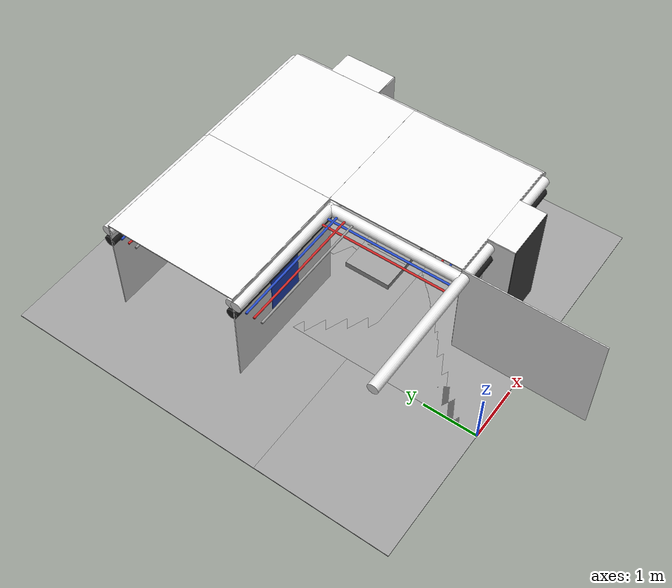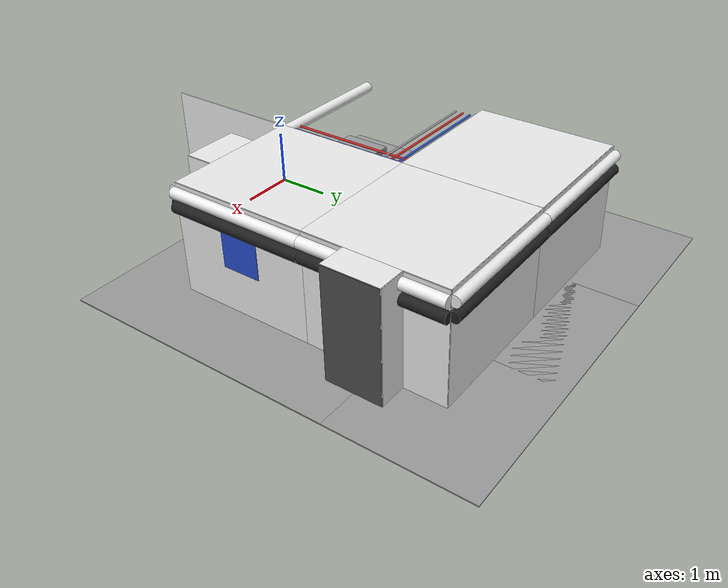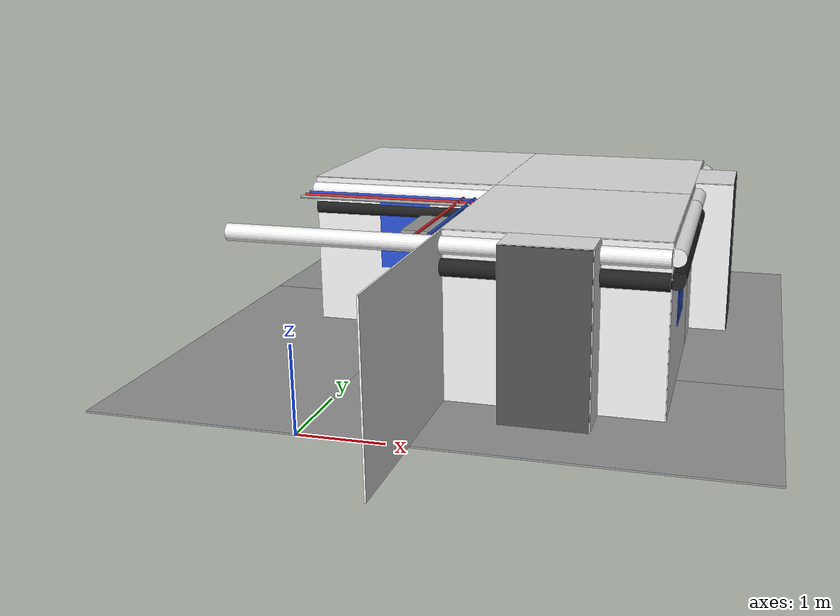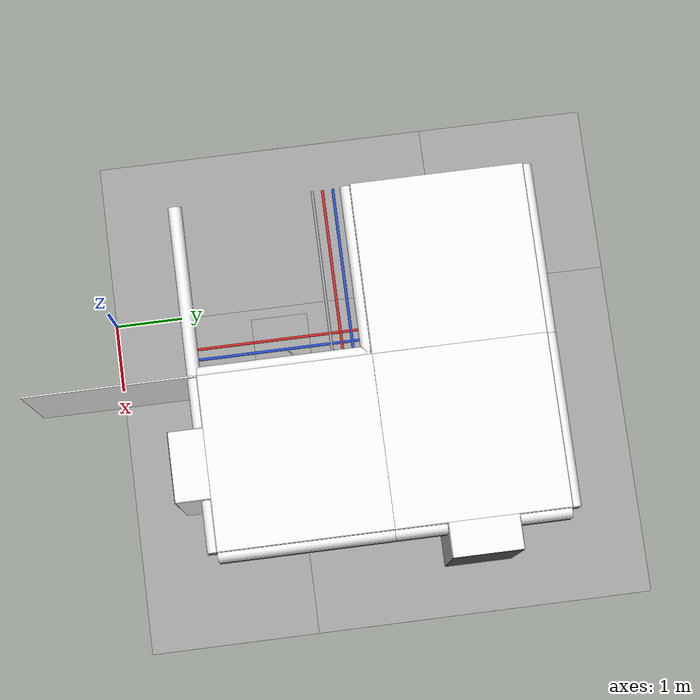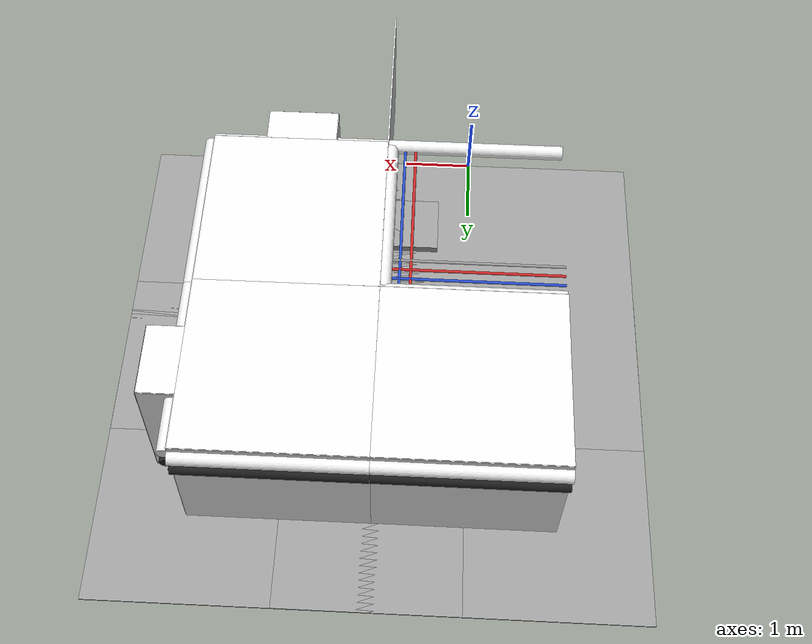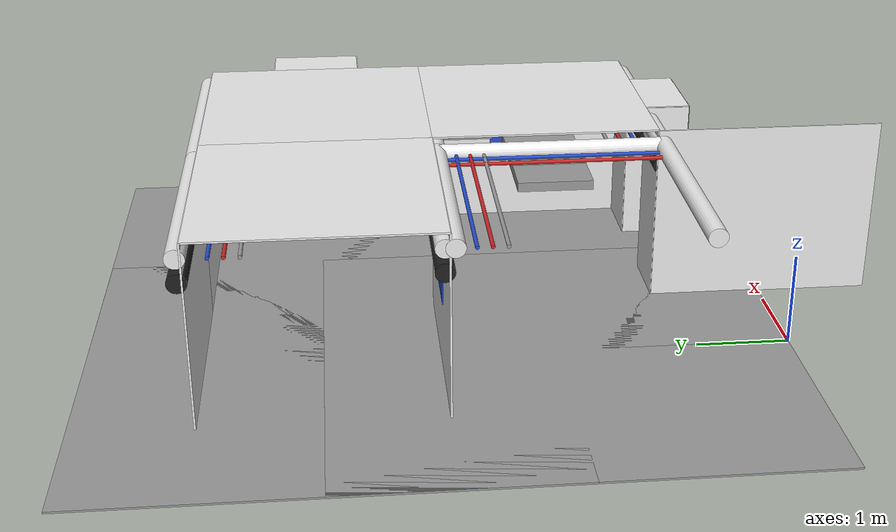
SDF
<sdf version="1.6">
 <world name="default">
  <model name="wall_right_0_0_0_0">
   <static>1</static>
   <pose>1.25 0.0 1.0 0.0 0.0 1.57</pose>
   <link name="link">
    <collision name="collision"><geometry><box><size>2.5 0.02 2.0</size></box></geometry></collision>
    <visual name="visual">
     <material>
      <script><name>Gazebo/White</name><uri>file://media/materials/scripts/gazebo.material</uri></script>
     </material>
     <geometry><box><size>2.5 0.02 2.0</size></box></geometry>
    </visual>
   </link>
  </model>
  <model name="ceiling_1_0_1_1_2">
   <pose>1.0 2.5 1.7 0.0 0.0 1.57</pose>
   <link name="link_1">
    <visual name="visual">
     <geometry><box><size>0.8 1 0.1</size></box></geometry>
     <material>
      <script><uri>file://media/materials/scripts/gazebo.material</uri><name>Gazebo/Grey</name></script>
     </material>
    </visual>
    <collision name="collision"><geometry><box><size>0.8 1 0.1</size></box></geometry></collision>
   </link>
   <static>1</static>
  </model>
  <model name="red_pipe_right_0_1_0_2">
   <static>1</static>
   <pose>0.0 2.5 1.84 0.0 0.0 0.0</pose>
   <link name="link_0">
    <visual name="visual">
     <pose>0.85 0 0 1.57 0 0</pose>
     <geometry><cylinder><radius>0.02</radius><length>2.5</length></cylinder></geometry>
     <material>
      <script><uri>file://media/materials/scripts/gazebo.material</uri><name>Gazebo/Red</name></script>
     </material>
    </visual>
    <collision name="collision">
     <pose>0.85 0 0 1.57 0 0</pose>
     <geometry><cylinder><radius>0.02</radius><length>2.5</length></cylinder></geometry>
    </collision>
   </link>
  </model>
  <model name="blue_pipe_right_0_1_0_2">
   <static>1</static>
   <pose>0.0 2.5 1.84 0.0 0.0 0.0</pose>
   <link name="link_0">
    <visual name="visual">
     <pose>1 0 0 1.57 0 0</pose>
     <geometry><cylinder><radius>0.02</radius><length>2.5</length></cylinder></geometry>
     <material>
      <script><uri>file://media/materials/scripts/gazebo.material</uri><name>Gazebo/Blue</name></script>
     </material>
    </visual>
    <collision name="collision">
     <pose>1 0 0 1.57 0 0</pose>
     <geometry><cylinder><radius>0.02</radius><length>2.5</length></cylinder></geometry>
    </collision>
   </link>
  </model>
  <model name="white_pipe_left_1_0_1_0_2">
   <static>1</static>
   <pose>0.0 2.5 1.84 0.0 0.0 1.57</pose>
   <link name="link_0">
    <visual name="visual">
     <pose>-1.3 0 0 1.57 0 0</pose>
     <geometry><cylinder><radius>0.1</radius><length>2.5</length></cylinder></geometry>
     <material>
      <script><uri>file://media/materials/scripts/gazebo.material</uri><name>Gazebo/White</name></script>
     </material>
    </visual>
    <collision name="collision">
     <pose>-1.3 0 0 1.57 0 0</pose>
     <geometry><cylinder><radius>0.1</radius><length>2.5</length></cylinder></geometry>
    </collision>
   </link>
  </model>
  <model name="white_pipe_right_1_0_1_0_2">
   <static>1</static>
   <pose>0.0 2.5 1.84 0.0 0.0 1.57</pose>
   <link name="link_0">
    <visual name="visual">
     <pose>1.3 0 0 1.57 0 0</pose>
     <geometry><cylinder><radius>0.1</radius><length>2.5</length></cylinder></geometry>
     <material>
      <script><uri>file://media/materials/scripts/gazebo.material</uri><name>Gazebo/White</name></script>
     </material>
    </visual>
    <collision name="collision">
     <pose>1.3 0 0 1.57 0 0</pose>
     <geometry><cylinder><radius>0.1</radius><length>2.5</length></cylinder></geometry>
    </collision>
   </link>
  </model>
  <model name="black_pipe_right_1_0_1_0_2">
   <static>1</static>
   <pose>0.0 2.5 1.84 0.0 0.0 1.57</pose>
   <link name="link_0">
    <visual name="visual">
     <pose>1.3 0 -0.25 1.57 0 0</pose>
     <geometry><cylinder><radius>0.1</radius><length>2.5</length></cylinder></geometry>
     <material>
      <script><uri>file://media/materials/scripts/gazebo.material</uri><name>Gazebo/Black</name></script>
     </material>
    </visual>
    <collision name="collision">
     <pose>1.3 0 -0.25 1.57 0 0</pose>
     <geometry><cylinder><radius>0.1</radius><length>2.5</length></cylinder></geometry>
    </collision>
   </link>
  </model>
  <model name="grey_pipe_right_1_0_1_0_2">
   <static>1</static>
   <pose>0.0 2.5 1.84 0.0 0.0 1.57</pose>
   <link name="link_0">
    <visual name="visual">
     <pose>0.7 0 0 1.57 0 0</pose>
     <geometry><cylinder><radius>0.02</radius><length>2.5</length></cylinder></geometry>
     <material>
      <script><uri>file://media/materials/scripts/gazebo.material</uri><name>Gazebo/Grey</name></script>
     </material>
    </visual>
    <collision name="collision">
     <pose>0.7 0 0 1.57 0 0</pose>
     <geometry><cylinder><radius>0.02</radius><length>2.5</length></cylinder></geometry>
    </collision>
   </link>
  </model>
  <model name="red_pipe_right_1_0_1_0_2">
   <static>1</static>
   <pose>0.0 2.5 1.84 0.0 0.0 1.57</pose>
   <link name="link_0">
    <visual name="visual">
     <pose>0.85 0 0 1.57 0 0</pose>
     <geometry><cylinder><radius>0.02</radius><length>2.5</length></cylinder></geometry>
     <material>
      <script><uri>file://media/materials/scripts/gazebo.material</uri><name>Gazebo/Red</name></script>
     </material>
    </visual>
    <collision name="collision">
     <pose>0.85 0 0 1.57 0 0</pose>
     <geometry><cylinder><radius>0.02</radius><length>2.5</length></cylinder></geometry>
    </collision>
   </link>
  </model>
  <model name="blue_pipe_right_1_0_1_0_2">
   <static>1</static>
   <pose>0.0 2.5 1.84 0.0 0.0 1.57</pose>
   <link name="link_0">
    <visual name="visual">
     <pose>1 0 0 1.57 0 0</pose>
     <geometry><cylinder><radius>0.02</radius><length>2.5</length></cylinder></geometry>
     <material>
      <script><uri>file://media/materials/scripts/gazebo.material</uri><name>Gazebo/Blue</name></script>
     </material>
    </visual>
    <collision name="collision">
     <pose>1 0 0 1.57 0 0</pose>
     <geometry><cylinder><radius>0.02</radius><length>2.5</length></cylinder></geometry>
    </collision>
   </link>
  </model>
  <model name="panel_0_1_0_2">
   <static>1</static>
   <pose>0.0 3.75 1.3 0.0 0.0 1.57</pose>
   <link name="link">
    <collision name="collision"><geometry><box><size>0.04 0.7 1</size></box></geometry></collision>
    <visual name="visual">
     <material>
      <script><name>Gazebo/Blue</name><uri>file://media/materials/scripts/gazebo.material</uri></script>
     </material>
     <geometry><box><size>0.04 0.7 1</size></box></geometry>
    </visual>
   </link>
  </model>
  <model name="wall_bottom_0_1_0_2">
   <static>1</static>
   <pose>0.0 2.5 0.0 0.0 0.0 0.0</pose>
   <link name="link">
    <collision name="collision"><geometry><box><size>5.0 5.0 0.02</size></box></geometry></collision>
    <visual name="visual">
     <material>
      <script><name>Gazebo/Grey</name><uri>file://media/materials/scripts/gazebo.material</uri></script>
     </material>
     <geometry><box><size>5.0 5.0 0.02</size></box></geometry>
    </visual>
   </link>
  </model>
  <model name="wall_front_1_1_0_3">
   <static>1</static>
   <pose>3.75 2.5 1.0 0.0 0.0 -1.57</pose>
   <link name="link">
    <collision name="collision"><geometry><box><size>2.5 0.02 2.0</size></box></geometry></collision>
    <visual name="visual">
     <material>
      <script><name>Gazebo/White</name><uri>file://media/materials/scripts/gazebo.material</uri></script>
     </material>
     <geometry><box><size>2.5 0.02 2.0</size></box></geometry>
    </visual>
   </link>
  </model>
  <model name="wall_top_1_1_0_3">
   <static>1</static>
   <pose>2.5 2.5 2.0 1.57 0.0 -1.57</pose>
   <link name="link">
    <collision name="collision"><geometry><box><size>2.5 0.02 2.5</size></box></geometry></collision>
    <visual name="visual">
     <material>
      <script><name>Gazebo/White</name><uri>file://media/materials/scripts/gazebo.material</uri></script>
     </material>
     <geometry><box><size>2.5 0.02 2.5</size></box></geometry>
    </visual>
   </link>
  </model>
  <model name="ceiling_1_1_1_0_3">
   <pose>1.5 2.5 1.7 0.0 0.0 -1.57</pose>
   <link name="link_1">
    <visual name="visual">
     <geometry><box><size>0.8 1 0.1</size></box></geometry>
     <material>
      <script><uri>file://media/materials/scripts/gazebo.material</uri><name>Gazebo/Grey</name></script>
     </material>
    </visual>
    <collision name="collision"><geometry><box><size>0.8 1 0.1</size></box></geometry></collision>
   </link>
   <static>1</static>
  </model>
  <model name="ceiling_1_1_1_1_3">
   <pose>2.5 3.5 1.7 0.0 0.0 0.0</pose>
   <link name="link_1">
    <visual name="visual">
     <geometry><box><size>0.8 1 0.1</size></box></geometry>
     <material>
      <script><uri>file://media/materials/scripts/gazebo.material</uri><name>Gazebo/Grey</name></script>
     </material>
    </visual>
    <collision name="collision"><geometry><box><size>0.8 1 0.1</size></box></geometry></collision>
   </link>
   <static>1</static>
  </model>
  <model name="white_pipe_left_1_1_0_3">
   <static>1</static>
   <pose>2.5 2.5 1.84 0.0 0.0 -1.57</pose>
   <link name="link_0">
    <visual name="visual">
     <pose>-1.3 0 0 1.57 0 0</pose>
     <geometry><cylinder><radius>0.1</radius><length>2.5</length></cylinder></geometry>
     <material>
      <script><uri>file://media/materials/scripts/gazebo.material</uri><name>Gazebo/White</name></script>
     </material>
    </visual>
    <collision name="collision">
     <pose>-1.3 0 0 1.57 0 0</pose>
     <geometry><cylinder><radius>0.1</radius><length>2.5</length></cylinder></geometry>
    </collision>
   </link>
  </model>
  <model name="white_pipe_right_1_1_0_3">
   <static>1</static>
   <pose>2.5 2.5 1.84 0.0 0.0 -1.57</pose>
   <link name="link_0">
    <visual name="visual">
     <pose>1.3 0 0 1.57 0 0</pose>
     <geometry><cylinder><radius>0.1</radius><length>2.5</length></cylinder></geometry>
     <material>
      <script><uri>file://media/materials/scripts/gazebo.material</uri><name>Gazebo/White</name></script>
     </material>
    </visual>
    <collision name="collision">
     <pose>1.3 0 0 1.57 0 0</pose>
     <geometry><cylinder><radius>0.1</radius><length>2.5</length></cylinder></geometry>
    </collision>
   </link>
  </model>
  <model name="black_pipe_right_1_1_0_3">
   <static>1</static>
   <pose>2.5 2.5 1.84 0.0 0.0 -1.57</pose>
   <link name="link_0">
    <visual name="visual">
     <pose>1.3 0 -0.25 1.57 0 0</pose>
     <geometry><cylinder><radius>0.1</radius><length>2.5</length></cylinder></geometry>
     <material>
      <script><uri>file://media/materials/scripts/gazebo.material</uri><name>Gazebo/Black</name></script>
     </material>
    </visual>
    <collision name="collision">
     <pose>1.3 0 -0.25 1.57 0 0</pose>
     <geometry><cylinder><radius>0.1</radius><length>2.5</length></cylinder></geometry>
    </collision>
   </link>
  </model>
  <model name="grey_pipe_right_1_1_0_3">
   <static>1</static>
   <pose>2.5 2.5 1.84 0.0 0.0 -1.57</pose>
   <link name="link_0">
    <visual name="visual">
     <pose>0.7 0 0 1.57 0 0</pose>
     <geometry><cylinder><radius>0.02</radius><length>2.5</length></cylinder></geometry>
     <material>
      <script><uri>file://media/materials/scripts/gazebo.material</uri><name>Gazebo/Grey</name></script>
     </material>
    </visual>
    <collision name="collision">
     <pose>0.7 0 0 1.57 0 0</pose>
     <geometry><cylinder><radius>0.02</radius><length>2.5</length></cylinder></geometry>
    </collision>
   </link>
  </model>
  <model name="red_pipe_right_1_1_0_3">
   <static>1</static>
   <pose>2.5 2.5 1.84 0.0 0.0 -1.57</pose>
   <link name="link_0">
    <visual name="visual">
     <pose>0.85 0 0 1.57 0 0</pose>
     <geometry><cylinder><radius>0.02</radius><length>2.5</length></cylinder></geometry>
     <material>
      <script><uri>file://media/materials/scripts/gazebo.material</uri><name>Gazebo/Red</name></script>
     </material>
    </visual>
    <collision name="collision">
     <pose>0.85 0 0 1.57 0 0</pose>
     <geometry><cylinder><radius>0.02</radius><length>2.5</length></cylinder></geometry>
    </collision>
   </link>
  </model>
  <model name="blue_pipe_right_1_1_0_3">
   <static>1</static>
   <pose>2.5 2.5 1.84 0.0 0.0 -1.57</pose>
   <link name="link_0">
    <visual name="visual">
     <pose>1 0 0 1.57 0 0</pose>
     <geometry><cylinder><radius>0.02</radius><length>2.5</length></cylinder></geometry>
     <material>
      <script><uri>file://media/materials/scripts/gazebo.material</uri><name>Gazebo/Blue</name></script>
     </material>
    </visual>
    <collision name="collision">
     <pose>1 0 0 1.57 0 0</pose>
     <geometry><cylinder><radius>0.02</radius><length>2.5</length></cylinder></geometry>
    </collision>
   </link>
  </model>
  <model name="white_pipe_left_1_1_1_0_3">
   <static>1</static>
   <pose>2.5 2.5 1.84 0.0 0.0 0.0</pose>
   <link name="link_0">
    <visual name="visual">
     <pose>-1.3 0 0 1.57 0 0</pose>
     <geometry><cylinder><radius>0.1</radius><length>2.5</length></cylinder></geometry>
     <material>
      <script><uri>file://media/materials/scripts/gazebo.material</uri><name>Gazebo/White</name></script>
     </material>
    </visual>
    <collision name="collision">
     <pose>-1.3 0 0 1.57 0 0</pose>
     <geometry><cylinder><radius>0.1</radius><length>2.5</length></cylinder></geometry>
    </collision>
   </link>
  </model>
  <model name="white_pipe_right_1_1_1_0_3">
   <static>1</static>
   <pose>2.5 2.5 1.84 0.0 0.0 0.0</pose>
   <link name="link_0">
    <visual name="visual">
     <pose>1.3 0 0 1.57 0 0</pose>
     <geometry><cylinder><radius>0.1</radius><length>2.5</length></cylinder></geometry>
     <material>
      <script><uri>file://media/materials/scripts/gazebo.material</uri><name>Gazebo/White</name></script>
     </material>
    </visual>
    <collision name="collision">
     <pose>1.3 0 0 1.57 0 0</pose>
     <geometry><cylinder><radius>0.1</radius><length>2.5</length></cylinder></geometry>
    </collision>
   </link>
  </model>
  <model name="black_pipe_right_1_1_1_0_3">
   <static>1</static>
   <pose>2.5 2.5 1.84 0.0 0.0 0.0</pose>
   <link name="link_0">
    <visual name="visual">
     <pose>1.3 0 -0.25 1.57 0 0</pose>
     <geometry><cylinder><radius>0.1</radius><length>2.5</length></cylinder></geometry>
     <material>
      <script><uri>file://media/materials/scripts/gazebo.material</uri><name>Gazebo/Black</name></script>
     </material>
    </visual>
    <collision name="collision">
     <pose>1.3 0 -0.25 1.57 0 0</pose>
     <geometry><cylinder><radius>0.1</radius><length>2.5</length></cylinder></geometry>
    </collision>
   </link>
  </model>
  <model name="grey_pipe_right_1_1_1_0_3">
   <static>1</static>
   <pose>2.5 2.5 1.84 0.0 0.0 0.0</pose>
   <link name="link_0">
    <visual name="visual">
     <pose>0.7 0 0 1.57 0 0</pose>
     <geometry><cylinder><radius>0.02</radius><length>2.5</length></cylinder></geometry>
     <material>
      <script><uri>file://media/materials/scripts/gazebo.material</uri><name>Gazebo/Grey</name></script>
     </material>
    </visual>
    <collision name="collision">
     <pose>0.7 0 0 1.57 0 0</pose>
     <geometry><cylinder><radius>0.02</radius><length>2.5</length></cylinder></geometry>
    </collision>
   </link>
  </model>
  <model name="red_pipe_right_1_1_1_0_3">
   <static>1</static>
   <pose>2.5 2.5 1.84 0.0 0.0 0.0</pose>
   <link name="link_0">
    <visual name="visual">
     <pose>0.85 0 0 1.57 0 0</pose>
     <geometry><cylinder><radius>0.02</radius><length>2.5</length></cylinder></geometry>
     <material>
      <script><uri>file://media/materials/scripts/gazebo.material</uri><name>Gazebo/Red</name></script>
     </material>
    </visual>
    <collision name="collision">
     <pose>0.85 0 0 1.57 0 0</pose>
     <geometry><cylinder><radius>0.02</radius><length>2.5</length></cylinder></geometry>
    </collision>
   </link>
  </model>
  <model name="blue_pipe_right_1_1_1_0_3">
   <static>1</static>
   <pose>2.5 2.5 1.84 0.0 0.0 0.0</pose>
   <link name="link_0">
    <visual name="visual">
     <pose>1 0 0 1.57 0 0</pose>
     <geometry><cylinder><radius>0.02</radius><length>2.5</length></cylinder></geometry>
     <material>
      <script><uri>file://media/materials/scripts/gazebo.material</uri><name>Gazebo/Blue</name></script>
     </material>
    </visual>
    <collision name="collision">
     <pose>1 0 0 1.57 0 0</pose>
     <geometry><cylinder><radius>0.02</radius><length>2.5</length></cylinder></geometry>
    </collision>
   </link>
  </model>
  <model name="panel_1_1_0_3">
   <static>1</static>
   <pose>3.75 2.5 1.3 0.0 0.0 0.0</pose>
   <link name="link">
    <collision name="collision"><geometry><box><size>0.04 0.7 1</size></box></geometry></collision>
    <visual name="visual">
     <material>
      <script><name>Gazebo/Blue</name><uri>file://media/materials/scripts/gazebo.material</uri></script>
     </material>
     <geometry><box><size>0.04 0.7 1</size></box></geometry>
    </visual>
   </link>
  </model>
  <model name="wall_right_front_left_1_1_0_3">
   <static>1</static>
   <pose>3.375 1.25 1.0 0.0 0.0 0.0</pose>
   <link name="link">
    <collision name="collision"><geometry><box><size>0.75 0.02 2.0</size></box></geometry></collision>
    <visual name="visual">
     <material>
      <script><name>Gazebo/White</name><uri>file://media/materials/scripts/gazebo.material</uri></script>
     </material>
     <geometry><box><size>0.75 0.02 2.0</size></box></geometry>
    </visual>
   </link>
  </model>
  <model name="wall_right_front_right_1_1_0_3">
   <static>1</static>
   <pose>1.625 1.25 1.0 0.0 0.0 0.0</pose>
   <link name="link">
    <collision name="collision"><geometry><box><size>0.75 0.02 2.0</size></box></geometry></collision>
    <visual name="visual">
     <material>
      <script><name>Gazebo/White</name><uri>file://media/materials/scripts/gazebo.material</uri></script>
     </material>
     <geometry><box><size>0.75 0.02 2.0</size></box></geometry>
    </visual>
   </link>
  </model>
  <model name="wall_right_front_up_1_1_0_3">
   <static>1</static>
   <pose>2.5 1.25 2.0 0.0 0.0 0.0</pose>
   <link name="link">
    <collision name="collision"><geometry><box><size>1.0 0.02 0.001</size></box></geometry></collision>
    <visual name="visual">
     <material>
      <script><name>Gazebo/White</name><uri>file://media/materials/scripts/gazebo.material</uri></script>
     </material>
     <geometry><box><size>1.0 0.02 0.001</size></box></geometry>
    </visual>
   </link>
  </model>
  <model name="wall_right_inside_back_1_1_0_3">
   <static>1</static>
   <pose>2.5 0.75 1.0 0.0 0.0 0.0</pose>
   <link name="link">
    <collision name="collision"><geometry><box><size>1 0.02 2</size></box></geometry></collision>
    <visual name="visual">
     <material>
      <script><name>Gazebo/DarkGrey</name><uri>file://media/materials/scripts/gazebo.material</uri></script>
     </material>
     <geometry><box><size>1 0.02 2</size></box></geometry>
    </visual>
   </link>
  </model>
  <model name="wall_right_inside_left_1_1_0_3">
   <static>1</static>
   <pose>3.0 1.0 1.0 0.0 0.0 -1.57</pose>
   <link name="link">
    <collision name="collision"><geometry><box><size>0.5 0.02 2</size></box></geometry></collision>
    <visual name="visual">
     <material>
      <script><name>Gazebo/White</name><uri>file://media/materials/scripts/gazebo.material</uri></script>
     </material>
     <geometry><box><size>0.5 0.02 2</size></box></geometry>
    </visual>
   </link>
  </model>
  <model name="wall_right_inside_right_1_1_0_3">
   <static>1</static>
   <pose>2.0 1.0 1.0 0.0 0.0 -1.57</pose>
   <link name="link">
    <collision name="collision"><geometry><box><size>0.5 0.02 2</size></box></geometry></collision>
    <visual name="visual">
     <material>
      <script><name>Gazebo/White</name><uri>file://media/materials/scripts/gazebo.material</uri></script>
     </material>
     <geometry><box><size>0.5 0.02 2</size></box></geometry>
    </visual>
   </link>
  </model>
  <model name="wall_right_inside_top_1_1_0_3">
   <static>1</static>
   <pose>2.5 1.0 2.0 1.57 0.0 0.0</pose>
   <link name="link">
    <collision name="collision"><geometry><box><size>1 0.02 0.5</size></box></geometry></collision>
    <visual name="visual">
     <material>
      <script><name>Gazebo/White</name><uri>file://media/materials/scripts/gazebo.material</uri></script>
     </material>
     <geometry><box><size>1 0.02 0.5</size></box></geometry>
    </visual>
   </link>
  </model>
  <model name="wall_bottom_1_1_0_3">
   <static>1</static>
   <pose>2.5 2.5 0.0 0.0 0.0 -1.57</pose>
   <link name="link">
    <collision name="collision"><geometry><box><size>5.0 5.0 0.02</size></box></geometry></collision>
    <visual name="visual">
     <material>
      <script><name>Gazebo/Grey</name><uri>file://media/materials/scripts/gazebo.material</uri></script>
     </material>
     <geometry><box><size>5.0 5.0 0.02</size></box></geometry>
    </visual>
   </link>
  </model>
  <model name="wall_front_1_2_0_3">
   <static>1</static>
   <pose>2.5 6.25 1.0 0.0 0.0 0.0</pose>
   <link name="link">
    <collision name="collision"><geometry><box><size>2.5 0.02 2.0</size></box></geometry></collision>
    <visual name="visual">
     <material>
      <script><name>Gazebo/White</name><uri>file://media/materials/scripts/gazebo.material</uri></script>
     </material>
     <geometry><box><size>2.5 0.02 2.0</size></box></geometry>
    </visual>
   </link>
  </model>
  <model name="wall_top_1_2_0_3">
   <static>1</static>
   <pose>2.5 5.0 2.0 1.57 0.0 0.0</pose>
   <link name="link">
    <collision name="collision"><geometry><box><size>2.5 0.02 2.5</size></box></geometry></collision>
    <visual name="visual">
     <material>
      <script><name>Gazebo/White</name><uri>file://media/materials/scripts/gazebo.material</uri></script>
     </material>
     <geometry><box><size>2.5 0.02 2.5</size></box></geometry>
    </visual>
   </link>
  </model>
  <model name="ceiling_1_1_2_0_3">
   <pose>2.5 4.0 1.7 0.0 0.0 0.0</pose>
   <link name="link_1">
    <visual name="visual">
     <geometry><box><size>0.8 1 0.1</size></box></geometry>
     <material>
      <script><uri>file://media/materials/scripts/gazebo.material</uri><name>Gazebo/Grey</name></script>
     </material>
    </visual>
    <collision name="collision"><geometry><box><size>0.8 1 0.1</size></box></geometry></collision>
   </link>
   <static>1</static>
  </model>
  <model name="ceiling_1_1_2_1_3">
   <pose>1.5 5.0 1.7 0.0 0.0 1.57</pose>
   <link name="link_1">
    <visual name="visual">
     <geometry><box><size>0.8 1 0.1</size></box></geometry>
     <material>
      <script><uri>file://media/materials/scripts/gazebo.material</uri><name>Gazebo/Grey</name></script>
     </material>
    </visual>
    <collision name="collision"><geometry><box><size>0.8 1 0.1</size></box></geometry></collision>
   </link>
   <static>1</static>
  </model>
  <model name="white_pipe_left_1_2_0_3">
   <static>1</static>
   <pose>2.5 5.0 1.84 0.0 0.0 0.0</pose>
   <link name="link_0">
    <visual name="visual">
     <pose>-1.3 0 0 1.57 0 0</pose>
     <geometry><cylinder><radius>0.1</radius><length>2.5</length></cylinder></geometry>
     <material>
      <script><uri>file://media/materials/scripts/gazebo.material</uri><name>Gazebo/White</name></script>
     </material>
    </visual>
    <collision name="collision">
     <pose>-1.3 0 0 1.57 0 0</pose>
     <geometry><cylinder><radius>0.1</radius><length>2.5</length></cylinder></geometry>
    </collision>
   </link>
  </model>
  <model name="white_pipe_right_1_2_0_3">
   <static>1</static>
   <pose>2.5 5.0 1.84 0.0 0.0 0.0</pose>
   <link name="link_0">
    <visual name="visual">
     <pose>1.3 0 0 1.57 0 0</pose>
     <geometry><cylinder><radius>0.1</radius><length>2.5</length></cylinder></geometry>
     <material>
      <script><uri>file://media/materials/scripts/gazebo.material</uri><name>Gazebo/White</name></script>
     </material>
    </visual>
    <collision name="collision">
     <pose>1.3 0 0 1.57 0 0</pose>
     <geometry><cylinder><radius>0.1</radius><length>2.5</length></cylinder></geometry>
    </collision>
   </link>
  </model>
  <model name="black_pipe_right_1_2_0_3">
   <static>1</static>
   <pose>2.5 5.0 1.84 0.0 0.0 0.0</pose>
   <link name="link_0">
    <visual name="visual">
     <pose>1.3 0 -0.25 1.57 0 0</pose>
     <geometry><cylinder><radius>0.1</radius><length>2.5</length></cylinder></geometry>
     <material>
      <script><uri>file://media/materials/scripts/gazebo.material</uri><name>Gazebo/Black</name></script>
     </material>
    </visual>
    <collision name="collision">
     <pose>1.3 0 -0.25 1.57 0 0</pose>
     <geometry><cylinder><radius>0.1</radius><length>2.5</length></cylinder></geometry>
    </collision>
   </link>
  </model>
  <model name="grey_pipe_right_1_2_0_3">
   <static>1</static>
   <pose>2.5 5.0 1.84 0.0 0.0 0.0</pose>
   <link name="link_0">
    <visual name="visual">
     <pose>0.7 0 0 1.57 0 0</pose>
     <geometry><cylinder><radius>0.02</radius><length>2.5</length></cylinder></geometry>
     <material>
      <script><uri>file://media/materials/scripts/gazebo.material</uri><name>Gazebo/Grey</name></script>
     </material>
    </visual>
    <collision name="collision">
     <pose>0.7 0 0 1.57 0 0</pose>
     <geometry><cylinder><radius>0.02</radius><length>2.5</length></cylinder></geometry>
    </collision>
   </link>
  </model>
  <model name="red_pipe_right_1_2_0_3">
   <static>1</static>
   <pose>2.5 5.0 1.84 0.0 0.0 0.0</pose>
   <link name="link_0">
    <visual name="visual">
     <pose>0.85 0 0 1.57 0 0</pose>
     <geometry><cylinder><radius>0.02</radius><length>2.5</length></cylinder></geometry>
     <material>
      <script><uri>file://media/materials/scripts/gazebo.material</uri><name>Gazebo/Red</name></script>
     </material>
    </visual>
    <collision name="collision">
     <pose>0.85 0 0 1.57 0 0</pose>
     <geometry><cylinder><radius>0.02</radius><length>2.5</length></cylinder></geometry>
    </collision>
   </link>
  </model>
  <model name="blue_pipe_right_1_2_0_3">
   <static>1</static>
   <pose>2.5 5.0 1.84 0.0 0.0 0.0</pose>
   <link name="link_0">
    <visual name="visual">
     <pose>1 0 0 1.57 0 0</pose>
     <geometry><cylinder><radius>0.02</radius><length>2.5</length></cylinder></geometry>
     <material>
      <script><uri>file://media/materials/scripts/gazebo.material</uri><name>Gazebo/Blue</name></script>
     </material>
    </visual>
    <collision name="collision">
     <pose>1 0 0 1.57 0 0</pose>
     <geometry><cylinder><radius>0.02</radius><length>2.5</length></cylinder></geometry>
    </collision>
   </link>
  </model>
  <model name="white_pipe_left_1_1_2_0_3">
   <static>1</static>
   <pose>2.5 5.0 1.84 0.0 0.0 1.57</pose>
   <link name="link_0">
    <visual name="visual">
     <pose>-1.3 0 0 1.57 0 0</pose>
     <geometry><cylinder><radius>0.1</radius><length>2.5</length></cylinder></geometry>
     <material>
      <script><uri>file://media/materials/scripts/gazebo.material</uri><name>Gazebo/White</name></script>
     </material>
    </visual>
    <collision name="collision">
     <pose>-1.3 0 0 1.57 0 0</pose>
     <geometry><cylinder><radius>0.1</radius><length>2.5</length></cylinder></geometry>
    </collision>
   </link>
  </model>
  <model name="white_pipe_right_1_1_2_0_3">
   <static>1</static>
   <pose>2.5 5.0 1.84 0.0 0.0 1.57</pose>
   <link name="link_0">
    <visual name="visual">
     <pose>1.3 0 0 1.57 0 0</pose>
     <geometry><cylinder><radius>0.1</radius><length>2.5</length></cylinder></geometry>
     <material>
      <script><uri>file://media/materials/scripts/gazebo.material</uri><name>Gazebo/White</name></script>
     </material>
    </visual>
    <collision name="collision">
     <pose>1.3 0 0 1.57 0 0</pose>
     <geometry><cylinder><radius>0.1</radius><length>2.5</length></cylinder></geometry>
    </collision>
   </link>
  </model>
  <model name="black_pipe_right_1_1_2_0_3">
   <static>1</static>
   <pose>2.5 5.0 1.84 0.0 0.0 1.57</pose>
   <link name="link_0">
    <visual name="visual">
     <pose>1.3 0 -0.25 1.57 0 0</pose>
     <geometry><cylinder><radius>0.1</radius><length>2.5</length></cylinder></geometry>
     <material>
      <script><uri>file://media/materials/scripts/gazebo.material</uri><name>Gazebo/Black</name></script>
     </material>
    </visual>
    <collision name="collision">
     <pose>1.3 0 -0.25 1.57 0 0</pose>
     <geometry><cylinder><radius>0.1</radius><length>2.5</length></cylinder></geometry>
    </collision>
   </link>
  </model>
  <model name="grey_pipe_right_1_1_2_0_3">
   <static>1</static>
   <pose>2.5 5.0 1.84 0.0 0.0 1.57</pose>
   <link name="link_0">
    <visual name="visual">
     <pose>0.7 0 0 1.57 0 0</pose>
     <geometry><cylinder><radius>0.02</radius><length>2.5</length></cylinder></geometry>
     <material>
      <script><uri>file://media/materials/scripts/gazebo.material</uri><name>Gazebo/Grey</name></script>
     </material>
    </visual>
    <collision name="collision">
     <pose>0.7 0 0 1.57 0 0</pose>
     <geometry><cylinder><radius>0.02</radius><length>2.5</length></cylinder></geometry>
    </collision>
   </link>
  </model>
  <model name="red_pipe_right_1_1_2_0_3">
   <static>1</static>
   <pose>2.5 5.0 1.84 0.0 0.0 1.57</pose>
   <link name="link_0">
    <visual name="visual">
     <pose>0.85 0 0 1.57 0 0</pose>
     <geometry><cylinder><radius>0.02</radius><length>2.5</length></cylinder></geometry>
     <material>
      <script><uri>file://media/materials/scripts/gazebo.material</uri><name>Gazebo/Red</name></script>
     </material>
    </visual>
    <collision name="collision">
     <pose>0.85 0 0 1.57 0 0</pose>
     <geometry><cylinder><radius>0.02</radius><length>2.5</length></cylinder></geometry>
    </collision>
   </link>
  </model>
  <model name="blue_pipe_right_1_1_2_0_3">
   <static>1</static>
   <pose>2.5 5.0 1.84 0.0 0.0 1.57</pose>
   <link name="link_0">
    <visual name="visual">
     <pose>1 0 0 1.57 0 0</pose>
     <geometry><cylinder><radius>0.02</radius><length>2.5</length></cylinder></geometry>
     <material>
      <script><uri>file://media/materials/scripts/gazebo.material</uri><name>Gazebo/Blue</name></script>
     </material>
    </visual>
    <collision name="collision">
     <pose>1 0 0 1.57 0 0</pose>
     <geometry><cylinder><radius>0.02</radius><length>2.5</length></cylinder></geometry>
    </collision>
   </link>
  </model>
  <model name="wall_right_front_left_1_2_0_3">
   <static>1</static>
   <pose>3.75 5.875 1.0 0.0 0.0 1.57</pose>
   <link name="link">
    <collision name="collision"><geometry><box><size>0.75 0.02 2.0</size></box></geometry></collision>
    <visual name="visual">
     <material>
      <script><name>Gazebo/White</name><uri>file://media/materials/scripts/gazebo.material</uri></script>
     </material>
     <geometry><box><size>0.75 0.02 2.0</size></box></geometry>
    </visual>
   </link>
  </model>
  <model name="wall_right_front_right_1_2_0_3">
   <static>1</static>
   <pose>3.75 4.125 1.0 0.0 0.0 1.57</pose>
   <link name="link">
    <collision name="collision"><geometry><box><size>0.75 0.02 2.0</size></box></geometry></collision>
    <visual name="visual">
     <material>
      <script><name>Gazebo/White</name><uri>file://media/materials/scripts/gazebo.material</uri></script>
     </material>
     <geometry><box><size>0.75 0.02 2.0</size></box></geometry>
    </visual>
   </link>
  </model>
  <model name="wall_right_front_up_1_2_0_3">
   <static>1</static>
   <pose>3.75 5.0 2.0 0.0 0.0 1.57</pose>
   <link name="link">
    <collision name="collision"><geometry><box><size>1.0 0.02 0.001</size></box></geometry></collision>
    <visual name="visual">
     <material>
      <script><name>Gazebo/White</name><uri>file://media/materials/scripts/gazebo.material</uri></script>
     </material>
     <geometry><box><size>1.0 0.02 0.001</size></box></geometry>
    </visual>
   </link>
  </model>
  <model name="wall_right_inside_back_1_2_0_3">
   <static>1</static>
   <pose>4.25 5.0 1.0 0.0 0.0 1.57</pose>
   <link name="link">
    <collision name="collision"><geometry><box><size>1 0.02 2</size></box></geometry></collision>
    <visual name="visual">
     <material>
      <script><name>Gazebo/DarkGrey</name><uri>file://media/materials/scripts/gazebo.material</uri></script>
     </material>
     <geometry><box><size>1 0.02 2</size></box></geometry>
    </visual>
   </link>
  </model>
  <model name="wall_right_inside_left_1_2_0_3">
   <static>1</static>
   <pose>4.0 5.5 1.0 0.0 0.0 0.0</pose>
   <link name="link">
    <collision name="collision"><geometry><box><size>0.5 0.02 2</size></box></geometry></collision>
    <visual name="visual">
     <material>
      <script><name>Gazebo/White</name><uri>file://media/materials/scripts/gazebo.material</uri></script>
     </material>
     <geometry><box><size>0.5 0.02 2</size></box></geometry>
    </visual>
   </link>
  </model>
  <model name="wall_right_inside_right_1_2_0_3">
   <static>1</static>
   <pose>4.0 4.5 1.0 0.0 0.0 0.0</pose>
   <link name="link">
    <collision name="collision"><geometry><box><size>0.5 0.02 2</size></box></geometry></collision>
    <visual name="visual">
     <material>
      <script><name>Gazebo/White</name><uri>file://media/materials/scripts/gazebo.material</uri></script>
     </material>
     <geometry><box><size>0.5 0.02 2</size></box></geometry>
    </visual>
   </link>
  </model>
  <model name="wall_right_inside_top_1_2_0_3">
   <static>1</static>
   <pose>4.0 5.0 2.0 1.57 0.0 1.57</pose>
   <link name="link">
    <collision name="collision"><geometry><box><size>1 0.02 0.5</size></box></geometry></collision>
    <visual name="visual">
     <material>
      <script><name>Gazebo/White</name><uri>file://media/materials/scripts/gazebo.material</uri></script>
     </material>
     <geometry><box><size>1 0.02 0.5</size></box></geometry>
    </visual>
   </link>
  </model>
  <model name="wall_bottom_1_2_0_3">
   <static>1</static>
   <pose>2.5 5.0 0.0 0.0 0.0 0.0</pose>
   <link name="link">
    <collision name="collision"><geometry><box><size>5.0 5.0 0.02</size></box></geometry></collision>
    <visual name="visual">
     <material>
      <script><name>Gazebo/Grey</name><uri>file://media/materials/scripts/gazebo.material</uri></script>
     </material>
     <geometry><box><size>5.0 5.0 0.02</size></box></geometry>
    </visual>
   </link>
  </model>
  <model name="wall_right_0_2_0_1">
   <static>1</static>
   <pose>0.0 6.25 1.0 0.0 0.0 3.14</pose>
   <link name="link">
    <collision name="collision"><geometry><box><size>2.5 0.02 2.0</size></box></geometry></collision>
    <visual name="visual">
     <material>
      <script><name>Gazebo/White</name><uri>file://media/materials/scripts/gazebo.material</uri></script>
     </material>
     <geometry><box><size>2.5 0.02 2.0</size></box></geometry>
    </visual>
   </link>
  </model>
  <model name="wall_left_0_2_0_1">
   <static>1</static>
   <pose>0.0 3.75 1.0 0.0 0.0 3.14</pose>
   <link name="link">
    <collision name="collision"><geometry><box><size>2.5 0.02 2.0</size></box></geometry></collision>
    <visual name="visual">
     <material>
      <script><name>Gazebo/White</name><uri>file://media/materials/scripts/gazebo.material</uri></script>
     </material>
     <geometry><box><size>2.5 0.02 2.0</size></box></geometry>
    </visual>
   </link>
  </model>
  <model name="wall_top_0_2_0_1">
   <static>1</static>
   <pose>0.0 5.0 2.0 1.57 0.0 1.57</pose>
   <link name="link">
    <collision name="collision"><geometry><box><size>2.5 0.02 2.5</size></box></geometry></collision>
    <visual name="visual">
     <material>
      <script><name>Gazebo/White</name><uri>file://media/materials/scripts/gazebo.material</uri></script>
     </material>
     <geometry><box><size>2.5 0.02 2.5</size></box></geometry>
    </visual>
   </link>
  </model>
  <model name="ceiling_1_0_2_0_1">
   <pose>0.0 5.0 1.7 0.0 0.0 1.57</pose>
   <link name="link_1">
    <visual name="visual">
     <geometry><box><size>0.8 1 0.1</size></box></geometry>
     <material>
      <script><uri>file://media/materials/scripts/gazebo.material</uri><name>Gazebo/Grey</name></script>
     </material>
    </visual>
    <collision name="collision"><geometry><box><size>0.8 1 0.1</size></box></geometry></collision>
   </link>
   <static>1</static>
  </model>
  <model name="ceiling_1_0_2_1_1">
   <pose>1.0 5.0 1.7 0.0 0.0 1.57</pose>
   <link name="link_1">
    <visual name="visual">
     <geometry><box><size>0.8 1 0.1</size></box></geometry>
     <material>
      <script><uri>file://media/materials/scripts/gazebo.material</uri><name>Gazebo/Grey</name></script>
     </material>
    </visual>
    <collision name="collision"><geometry><box><size>0.8 1 0.1</size></box></geometry></collision>
   </link>
   <static>1</static>
  </model>
  <model name="white_pipe_left_0_2_0_1">
   <static>1</static>
   <pose>0.0 5.0 1.84 0.0 0.0 1.57</pose>
   <link name="link_0">
    <visual name="visual">
     <pose>-1.3 0 0 1.57 0 0</pose>
     <geometry><cylinder><radius>0.1</radius><length>2.5</length></cylinder></geometry>
     <material>
      <script><uri>file://media/materials/scripts/gazebo.material</uri><name>Gazebo/White</name></script>
     </material>
    </visual>
    <collision name="collision">
     <pose>-1.3 0 0 1.57 0 0</pose>
     <geometry><cylinder><radius>0.1</radius><length>2.5</length></cylinder></geometry>
    </collision>
   </link>
  </model>
  <model name="white_pipe_right_0_2_0_1">
   <static>1</static>
   <pose>0.0 5.0 1.84 0.0 0.0 1.57</pose>
   <link name="link_0">
    <visual name="visual">
     <pose>1.3 0 0 1.57 0 0</pose>
     <geometry><cylinder><radius>0.1</radius><length>2.5</length></cylinder></geometry>
     <material>
      <script><uri>file://media/materials/scripts/gazebo.material</uri><name>Gazebo/White</name></script>
     </material>
    </visual>
    <collision name="collision">
     <pose>1.3 0 0 1.57 0 0</pose>
     <geometry><cylinder><radius>0.1</radius><length>2.5</length></cylinder></geometry>
    </collision>
   </link>
  </model>
  <model name="black_pipe_right_0_2_0_1">
   <static>1</static>
   <pose>0.0 5.0 1.84 0.0 0.0 1.57</pose>
   <link name="link_0">
    <visual name="visual">
     <pose>1.3 0 -0.25 1.57 0 0</pose>
     <geometry><cylinder><radius>0.1</radius><length>2.5</length></cylinder></geometry>
     <material>
      <script><uri>file://media/materials/scripts/gazebo.material</uri><name>Gazebo/Black</name></script>
     </material>
    </visual>
    <collision name="collision">
     <pose>1.3 0 -0.25 1.57 0 0</pose>
     <geometry><cylinder><radius>0.1</radius><length>2.5</length></cylinder></geometry>
    </collision>
   </link>
  </model>
  <model name="grey_pipe_right_0_2_0_1">
   <static>1</static>
   <pose>0.0 5.0 1.84 0.0 0.0 1.57</pose>
   <link name="link_0">
    <visual name="visual">
     <pose>0.7 0 0 1.57 0 0</pose>
     <geometry><cylinder><radius>0.02</radius><length>2.5</length></cylinder></geometry>
     <material>
      <script><uri>file://media/materials/scripts/gazebo.material</uri><name>Gazebo/Grey</name></script>
     </material>
    </visual>
    <collision name="collision">
     <pose>0.7 0 0 1.57 0 0</pose>
     <geometry><cylinder><radius>0.02</radius><length>2.5</length></cylinder></geometry>
    </collision>
   </link>
  </model>
  <model name="red_pipe_right_0_2_0_1">
   <static>1</static>
   <pose>0.0 5.0 1.84 0.0 0.0 1.57</pose>
   <link name="link_0">
    <visual name="visual">
     <pose>0.85 0 0 1.57 0 0</pose>
     <geometry><cylinder><radius>0.02</radius><length>2.5</length></cylinder></geometry>
     <material>
      <script><uri>file://media/materials/scripts/gazebo.material</uri><name>Gazebo/Red</name></script>
     </material>
    </visual>
    <collision name="collision">
     <pose>0.85 0 0 1.57 0 0</pose>
     <geometry><cylinder><radius>0.02</radius><length>2.5</length></cylinder></geometry>
    </collision>
   </link>
  </model>
  <model name="blue_pipe_right_0_2_0_1">
   <static>1</static>
   <pose>0.0 5.0 1.84 0.0 0.0 1.57</pose>
   <link name="link_0">
    <visual name="visual">
     <pose>1 0 0 1.57 0 0</pose>
     <geometry><cylinder><radius>0.02</radius><length>2.5</length></cylinder></geometry>
     <material>
      <script><uri>file://media/materials/scripts/gazebo.material</uri><name>Gazebo/Blue</name></script>
     </material>
    </visual>
    <collision name="collision">
     <pose>1 0 0 1.57 0 0</pose>
     <geometry><cylinder><radius>0.02</radius><length>2.5</length></cylinder></geometry>
    </collision>
   </link>
  </model>
  <model name="wall_bottom_0_2_0_1">
   <static>1</static>
   <pose>0.0 5.0 0.0 0.0 0.0 1.57</pose>
   <link name="link">
    <collision name="collision"><geometry><box><size>5.0 5.0 0.02</size></box></geometry></collision>
    <visual name="visual">
     <material>
      <script><name>Gazebo/Grey</name><uri>file://media/materials/scripts/gazebo.material</uri></script>
     </material>
     <geometry><box><size>5.0 5.0 0.02</size></box></geometry>
    </visual>
   </link>
  </model>
 </world>
</sdf>
